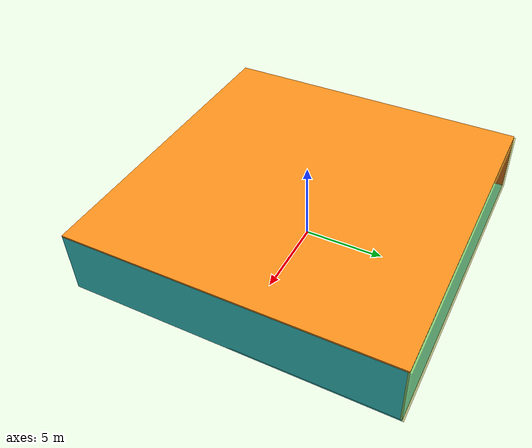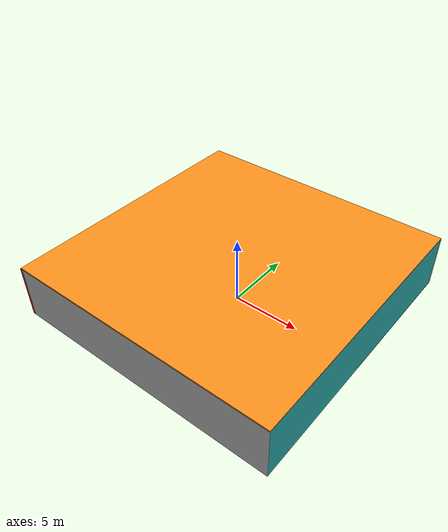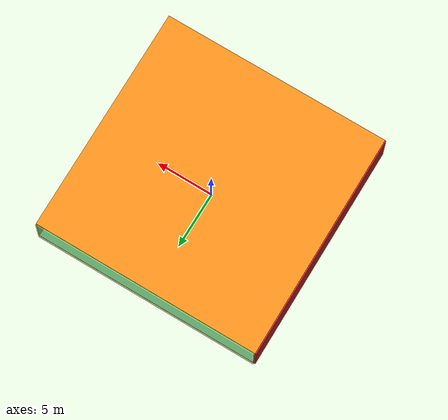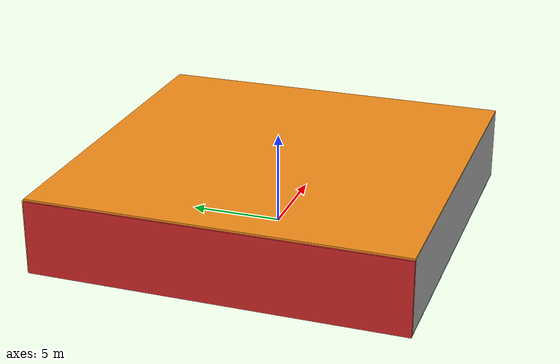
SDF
<sdf version="1.4">
 <world name="default">
  <physics type="ode">
   <max_step_size>0.001</max_step_size>
   <real_time_factor>1</real_time_factor>
   <real_time_update_rate>1000</real_time_update_rate>
   <gravity>0 0 -9.8</gravity>
  </physics>
  <scene><ambient>0.4 0.4 0.4 1</ambient><background>0.7 0.7 0.7 1</background><shadows>1</shadows></scene>
  <model name="Surrounding">
   <static>1</static>
   <link name="Ceiling">
    <collision name="Ceiling_Collision"><geometry><box><size>20 20 0.1</size></box></geometry></collision>
    <visual name="Ceiling_Visual">
     <geometry><box><size>20 20 0.1</size></box></geometry>
     <material>
      <script><uri>file://media/materials/scripts/gazebo.material</uri><name>Gazebo/Orange</name></script>
     </material>
    </visual>
    <pose>0 0 4.05 0 0 0</pose>
   </link>
   <link name="Wall_South">
    <collision name="Wall_South_Collision">
     <geometry><box><size>20 0 4</size></box></geometry>
     <pose>0 0 2 0 -0 0</pose>
    </collision>
    <visual name="Wall_South_Visual">
     <pose>0 0 2 0 -0 0</pose>
     <geometry><box><size>20 0 4</size></box></geometry>
     <material>
      <script><uri>file://media/materials/scripts/gazebo.material</uri><name>Gazebo/Pioneer2Body</name></script>
     </material>
    </visual>
    <velocity_decay><linear>0</linear><angular>0</angular></velocity_decay>
    <pose>0 -10 0 0 -0 0</pose>
   </link>
   <link name="Wall_East">
    <collision name="Wall_21_Collision">
     <geometry><box><size>20 0 4</size></box></geometry>
     <pose>0 0 2 0 -0 0</pose>
    </collision>
    <visual name="Wall_21_Visual">
     <pose>0 0 2 0 -0 0</pose>
     <geometry><box><size>20 0 4</size></box></geometry>
     <material>
      <script><uri>file://media/materials/scripts/gazebo.material</uri><name>Gazebo/TurquoiseGlow</name></script>
     </material>
    </visual>
    <velocity_decay><linear>0</linear><angular>0</angular></velocity_decay>
    <pose>10 0 0 0 -0 1.5708</pose>
   </link>
   <link name="Wall_North">
    <collision name="Wall_22_Collision">
     <geometry><box><size>20 0.2 4</size></box></geometry>
     <pose>0 0 2 0 -0 0</pose>
    </collision>
    <visual name="Wall_22_Visual">
     <pose>0 0 2 0 -0 0</pose>
     <geometry><box><size>20 0.2 4</size></box></geometry>
     <material>
      <script>
       <uri>file://media/materials/scripts/gazebo.material</uri>
       <name>Gazebo/YellowTransparent</name>
      </script>
     </material>
    </visual>
    <velocity_decay><linear>0</linear><angular>0</angular></velocity_decay>
    <pose>0 10 0 0 -0 0</pose>
   </link>
   <link name="Wall_West">
    <collision name="Wall_23_Collision">
     <geometry><box><size>20 0.2 4</size></box></geometry>
     <pose>0 0 2 0 -0 0</pose>
    </collision>
    <visual name="Wall_23_Visual">
     <pose>0 0 2 0 -0 0</pose>
     <geometry><box><size>20 0.2 4</size></box></geometry>
     <material>
      <script><uri>file://media/materials/scripts/gazebo.material</uri><name>Gazebo/RedGlow</name></script>
     </material>
    </visual>
    <velocity_decay><linear>0</linear><angular>0</angular></velocity_decay>
    <pose>-10 0 0 0 0 -1.5708</pose>
   </link>
   <link name="Ground_link">
    <collision name="collision">
     <pose>0 0 .05 0 -0 0</pose>
     <geometry><box><size>20 20 0.1</size></box></geometry>
    </collision>
    <visual name="visual">
     <pose>0 0 .05 0 -0 0</pose>
     <geometry><box><size>20 20 0.1</size></box></geometry>
     <material>
      <script><uri>file://media/materials/scripts/gazebo.material</uri><name>Gazebo/TurquoiseGlow</name></script>
     </material>
    </visual>
   </link>
   <static>1</static>
  </model>
  <spherical_coordinates>
   <surface_model>EARTH_WGS84</surface_model>
   <latitude_deg>0</latitude_deg>
   <longitude_deg>0</longitude_deg>
   <elevation>0</elevation>
   <heading_deg>0</heading_deg>
  </spherical_coordinates>
  <light name="lightball_0" type="diffuse">
   <diffuse>0.8 0.8 0.8 1</diffuse>
   <specular>0.2 0.2 0.2 1</specular>
   <attenuation>
    <range>100</range>
    <constant>0.7</constant>
    <linear>0.01</linear>
    <quadratic>0.001</quadratic>
   </attenuation>
   <direction>-0.5 0.1 -0.9</direction>
   <pose>-7.42086491832 0.314696327286 2.43678952056 0 0 0</pose>
  </light>
  <light name="lightball_1" type="diffuse">
   <diffuse>0.8 0.8 0.8 1</diffuse>
   <specular>0.2 0.2 0.2 1</specular>
   <attenuation>
    <range>100</range>
    <constant>0.7</constant>
    <linear>0.01</linear>
    <quadratic>0.001</quadratic>
   </attenuation>
   <direction>-0.5 0.1 -0.9</direction>
   <pose>-6.25503502359 8.37494095866 2.10493572249 0 0 0</pose>
  </light>
  <light name="lightball_2" type="diffuse">
   <diffuse>0.8 0.8 0.8 1</diffuse>
   <specular>0.2 0.2 0.2 1</specular>
   <attenuation>
    <range>100</range>
    <constant>0.7</constant>
    <linear>0.01</linear>
    <quadratic>0.001</quadratic>
   </attenuation>
   <direction>-0.5 0.1 -0.9</direction>
   <pose>-3.8354427938 7.2583921412 2.24815176783 0 0 0</pose>
  </light>
  <light name="lightball_3" type="diffuse">
   <diffuse>0.8 0.8 0.8 1</diffuse>
   <specular>0.2 0.2 0.2 1</specular>
   <attenuation>
    <range>100</range>
    <constant>0.7</constant>
    <linear>0.01</linear>
    <quadratic>0.001</quadratic>
   </attenuation>
   <direction>-0.5 0.1 -0.9</direction>
   <pose>6.30658300673 7.95585671991 2.11488633534 0 0 0</pose>
  </light>
  <light name="lightball_4" type="diffuse">
   <diffuse>0.8 0.8 0.8 1</diffuse>
   <specular>0.2 0.2 0.2 1</specular>
   <attenuation>
    <range>100</range>
    <constant>0.7</constant>
    <linear>0.01</linear>
    <quadratic>0.001</quadratic>
   </attenuation>
   <direction>-0.5 0.1 -0.9</direction>
   <pose>-1.00547055905 8.93631921053 1.43374781254 0 0 0</pose>
  </light>
  <light name="lightball_5" type="diffuse">
   <diffuse>0.8 0.8 0.8 1</diffuse>
   <specular>0.2 0.2 0.2 1</specular>
   <attenuation>
    <range>100</range>
    <constant>0.7</constant>
    <linear>0.01</linear>
    <quadratic>0.001</quadratic>
   </attenuation>
   <direction>-0.5 0.1 -0.9</direction>
   <pose>-0.394910897421 6.46932805083 1.3697474906 0 0 0</pose>
  </light>
  <include><uri>model://cabinet</uri><pose>-8.29689041709 -4.62891175086 0 0 0 1.13039372552</pose></include>
  <include><uri>model://cabinet</uri><pose>-7.17471180327 -1.68009524842 0 0 0 1.87756619009</pose></include>
  <include>
   <uri>model://construction_cone</uri>
   <pose>-8.20223754719 1.26010910485 0 0 0 2.12414585987</pose>
  </include>
  <include><uri>model://cabinet</uri><pose>-5.22652473654 -2.07428528082 0 0 0 0.0126827808031</pose></include>
  <include><uri>model://table</uri><pose>1.12778549237 -5.11951192484 0 0 0 2.35504104822</pose></include>
  <include><uri>model://cabinet</uri><pose>3.86461872518 -4.30075300968 0 0 0 0.383521176555</pose></include>
  <include>
   <uri>model://textured_shapes</uri>
   <pose>4.30278837385 1.50173557985 0 0 0 0.636144270638</pose>
  </include>
  <include><uri>model://cabinet</uri><pose>4.01655764041 4.11808465604 0 0 0 2.40928301811</pose></include>
  <include>
   <uri>model://textured_shapes</uri>
   <pose>7.28986330646 -4.02064540487 0 0 0 0.0901208484488</pose>
  </include>
 </world>
</sdf>

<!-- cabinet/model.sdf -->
<sdf version="1.5">
  <model name="cabinet">
    <static>true</static>
    <link name="cabinet_bottom_plate">
      <inertial>
        <pose>0 0 -1 0 0 0</pose>
        <inertia>
          <ixx>2.050000</ixx>
          <ixy>0</ixy>
          <ixz>0</ixz>
          <iyy>2.050000</iyy>
          <iyz>0</iyz>
          <izz>2.050000</izz>
        </inertia>
        <mass>25.000000</mass>
      </inertial>
      <collision name="cabinet_bottom_plate_geom">
        <pose>0 0 0.010000 0 0 0</pose>
        <geometry>
          <box>
            <size>0.450000 0.450000 0.020000</size>
          </box>
        </geometry>
      </collision>
      <visual name="cabinet_bottom_plate_geom_visual">
        <pose>0 0 0.010000 0 0 0</pose>
        <geometry>
          <box>
            <size>0.450000 0.450000 0.020000</size>
          </box>
        </geometry>
        <material>
          <script>
            <uri>model://media/materials/scripts/gazebo.material</uri>
            <name>Gazebo/Wood</name>
          </script>
        </material>
      </visual>
      <collision name="cabinet_bottom_plate_geom_cabinet_back_plate">
        <pose>0.235000 0 0.510000 0 0 0</pose>
        <geometry>
          <box>
            <size>0.020000 0.450000 1.020000</size>
          </box>
        </geometry>
      </collision>
      <visual name="cabinet_bottom_plate_geom_cabinet_back_plate_visual">
        <pose>0.235000 0 0.510000 0 0 0</pose>
        <geometry>
          <box>
            <size>0.020000 0.450000 1.020000</size>
          </box>
        </geometry>
        <material>
          <script>
            <uri>model://media/materials/scripts/gazebo.material</uri>
            <name>Gazebo/Wood</name>
          </script>
        </material>
      </visual>
      <collision name="cabinet_bottom_plate_geom_cabinet_left_plate">
        <pose>0 0.235000 0.510000 0 0 0</pose>
        <geometry>
          <box>
            <size>0.450000 0.020000 1.020000</size>
          </box>
        </geometry>
      </collision>
      <visual name="cabinet_bottom_plate_geom_cabinet_left_plate_visual">
        <pose>0 0.235000 0.510000 0 0 0</pose>
        <geometry>
          <box>
            <size>0.450000 0.020000 1.020000</size>
          </box>
        </geometry>
        <material>
          <script>
            <uri>model://media/materials/scripts/gazebo.material</uri>
            <name>Gazebo/Wood</name>
          </script>
        </material>
      </visual>
      <collision name="cabinet_bottom_plate_geom_cabinet_middle_plate">
        <pose>0 0 0.510000 0 0 0</pose>
        <geometry>
          <box>
            <size>0.450000 0.450000 0.020000</size>
          </box>
        </geometry>
      </collision>
      <visual name="cabinet_bottom_plate_geom_cabinet_middle_plate_visual">
        <pose>0 0 0.510000 0 0 0</pose>
        <geometry>
          <box>
            <size>0.450000 0.450000 0.020000</size>
          </box>
        </geometry>
        <material>
          <script>
            <uri>model://media/materials/scripts/gazebo.material</uri>
            <name>Gazebo/Wood</name>
          </script>
        </material>
      </visual>
      <collision name="cabinet_bottom_plate_geom_cabinet_right_plate">
        <pose>0 -0.235000 0.510000 0 0 0</pose>
        <geometry>
          <box>
            <size>0.450000 0.020000 1.020000</size>
          </box>
        </geometry>
      </collision>
      <visual name="cabinet_bottom_plate_geom_cabinet_right_plate_visual">
        <pose>0 -0.235000 0.510000 0 0 0</pose>
        <geometry>
          <box>
            <size>0.450000 0.020000 1.020000</size>
          </box>
        </geometry>
        <material>
          <script>
            <uri>model://media/materials/scripts/gazebo.material</uri>
            <name>Gazebo/Wood</name>
          </script>
        </material>
      </visual>
      <collision name="cabinet_bottom_plate_geom_cabinet_top_plate">
        <pose>0 0 1.010000 0 0 0</pose>
        <geometry>
          <box>
            <size>0.450000 0.450000 0.020000</size>
          </box>
        </geometry>
      </collision>
      <visual name="cabinet_bottom_plate_geom_cabinet_top_plate_visual">
        <pose>0 0 1.010000 0 0 0</pose>
        <geometry>
          <box>
            <size>0.450000 0.450000 0.020000</size>
          </box>
        </geometry>
        <material>
          <script>
            <uri>model://media/materials/scripts/gazebo.material</uri>
            <name>Gazebo/Wood</name>
          </script>
        </material>
      </visual>
    </link>
  </model>
</sdf>

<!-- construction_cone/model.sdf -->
<sdf version="1.5">
  <model name="Construction Cone">
    <link name="link">
      <collision name="collision">
        <geometry>
          <mesh>
            <scale>10 10 10</scale>
            <uri>file://isr-testbed/construction_cone/meshes/construction_cone.dae</uri>
          </mesh>
        </geometry>
      </collision>
      <visual name="visual">
        <geometry>
          <mesh>
            <scale>10 10 10</scale>
            <uri>file://isr-testbed/construction_cone/meshes/construction_cone.dae</uri>
          </mesh>
        </geometry>
      </visual>
    </link>
  </model>
</sdf>

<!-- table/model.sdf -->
<sdf version="1.5">
  <model name="table">
    <static>true</static>
    <link name="link">
      <collision name="surface">
        <pose>0 0 1.0 0 0 0</pose>
        <geometry>
          <box>
            <size>1.5 0.8 0.03</size>
          </box>
        </geometry>
        <surface>
          <friction>
            <ode>
              <mu>0.6</mu>
              <mu2>0.6</mu2>
            </ode>
          </friction>
        </surface>
      </collision>
      <visual name="visual1">
        <pose>0 0 1.0 0 0 0</pose>
        <geometry>
          <box>
            <size>1.5 0.8 0.03</size>
          </box>
        </geometry>
        <material>
          <script>
            <uri>model://media/materials/scripts/gazebo.material</uri>
            <name>Gazebo/Wood</name>
          </script>
        </material>
      </visual>
      <collision name="front_left_leg">
        <pose>0.68 0.38 0.5 0 0 0</pose>
        <geometry>
          <cylinder>
            <radius>0.02</radius>
            <length>1.0</length>
          </cylinder>
        </geometry>
      </collision>
      <visual name="front_left_leg">
        <pose>0.68 0.38 0.5 0 0 0</pose>
        <geometry>
          <cylinder>
            <radius>0.02</radius>
            <length>1.0</length>
          </cylinder>
        </geometry>
        <material>
          <script>
            <uri>model://media/materials/scripts/gazebo.material</uri>
            <name>Gazebo/Grey</name>
          </script>
        </material>
      </visual>
      <collision name="front_right_leg">
        <pose>0.68 -0.38 0.5 0 0 0</pose>
        <geometry>
          <cylinder>
            <radius>0.02</radius>
            <length>1.0</length>
          </cylinder>
        </geometry>
      </collision>
      <visual name="front_right_leg">
        <pose>0.68 -0.38 0.5 0 0 0</pose>
        <geometry>
          <cylinder>
            <radius>0.02</radius>
            <length>1.0</length>
          </cylinder>
        </geometry>
        <material>
          <script>
            <uri>model://media/materials/scripts/gazebo.material</uri>
            <name>Gazebo/Grey</name>
          </script>
        </material>
      </visual>
      <collision name="back_right_leg">
        <pose>-0.68 -0.38 0.5 0 0 0</pose>
        <geometry>
          <cylinder>
            <radius>0.02</radius>
            <length>1.0</length>
          </cylinder>
        </geometry>
      </collision>
      <visual name="back_right_leg">
        <pose>-0.68 -0.38 0.5 0 0 0</pose>
        <geometry>
          <cylinder>
            <radius>0.02</radius>
            <length>1.0</length>
          </cylinder>
        </geometry>
        <material>
          <script>
            <uri>model://media/materials/scripts/gazebo.material</uri>
            <name>Gazebo/Grey</name>
          </script>
        </material>
      </visual>
      <collision name="back_left_leg">
        <pose>-0.68 0.38 0.5 0 0 0</pose>
        <geometry>
          <cylinder>
            <radius>0.02</radius>
            <length>1.0</length>
          </cylinder>
        </geometry>
      </collision>
      <visual name="back_left_leg">
        <pose>-0.68 0.38 0.5 0 0 0</pose>
        <geometry>
          <cylinder>
            <radius>0.02</radius>
            <length>1.0</length>
          </cylinder>
        </geometry>
        <material>
          <script>
            <uri>model://media/materials/scripts/gazebo.material</uri>
            <name>Gazebo/Grey</name>
          </script>
        </material>
      </visual>
    </link>
  </model>
</sdf>

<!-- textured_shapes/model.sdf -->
<sdf version="1.6">
  <model name="textured_shapes">
    <pose>0 0 0.5 0 0 0</pose>
    <link name="box">
      <pose>0 -1.5 0 0 0 0</pose>
      <collision name="collision">
        <geometry>
          <box>
            <size>1 1 1</size>
          </box>
        </geometry>
      </collision>
      <visual name="visual">
        <geometry>
          <box>
            <size>1 1 1</size>
          </box>
        </geometry>
        <material>
          <script>
            <uri>model://../model_source/models/textured_shapes/materials/scripts</uri>
            <uri>model://../model_source/models/textured_shapes/materials/textures</uri>
            <name>TexturedShape/Squares</name>
          </script>
        </material>
      </visual>
    </link>
    <link name="sphere">
      <collision name="collision">
        <geometry>
          <sphere>
            <radius>0.5</radius>
          </sphere>
        </geometry>
      </collision>
      <visual name="visual">
        <geometry>
          <sphere>
            <radius>0.5</radius>
          </sphere>
        </geometry>
        <material>
          <script>
            <uri>model://../model_source/models/textured_shapes/materials/scripts</uri>
            <uri>model://../model_source/models/textured_shapes/materials/textures</uri>
            <name>TexturedShape/Squares</name>
          </script>
        </material>
      </visual>
    </link>
    <link name="cylinder">
      <pose>0 1.5 0 0 0 0</pose>
      <collision name="collision">
        <geometry>
          <cylinder>
            <radius>0.5</radius>
            <length>1</length>
          </cylinder>
        </geometry>
      </collision>
      <visual name="visual">
        <geometry>
          <cylinder>
            <radius>0.5</radius>
            <length>1</length>
          </cylinder>
        </geometry>
        <material>
          <script>
            <uri>model://../model_source/models/textured_shapes/materials/scripts</uri>
            <uri>model://../model_source/models/textured_shapes/materials/textures</uri>
            <name>TexturedShape/Squares</name>
          </script>
        </material>
      </visual>
    </link>
  </model>
</sdf>
